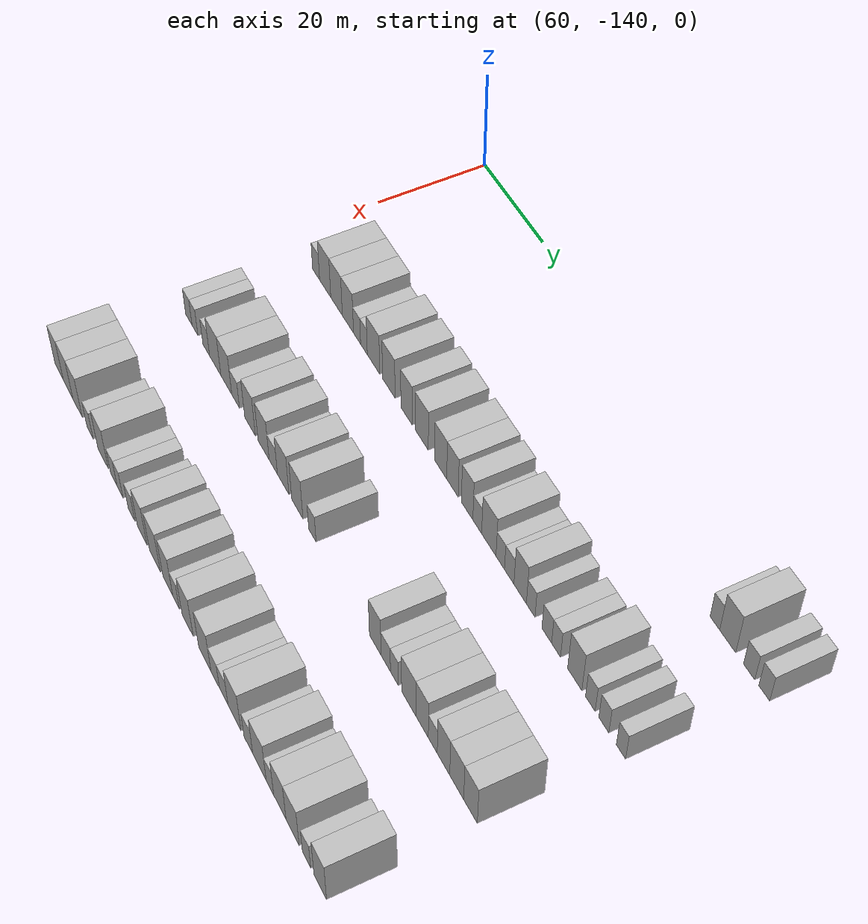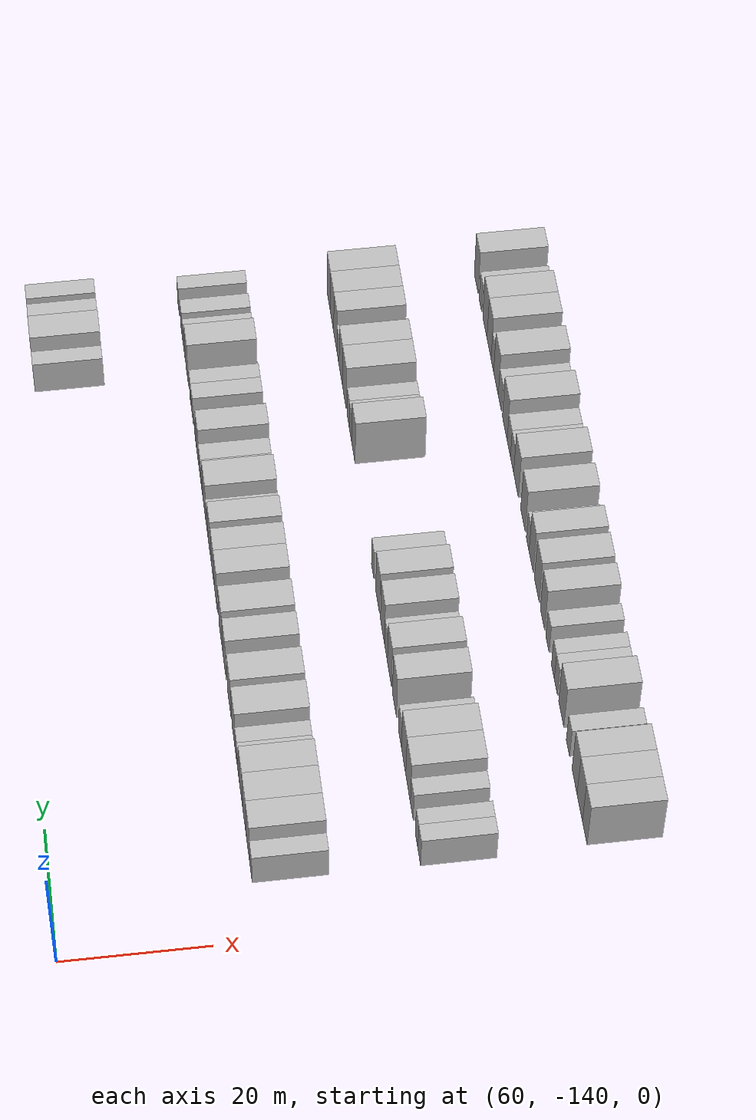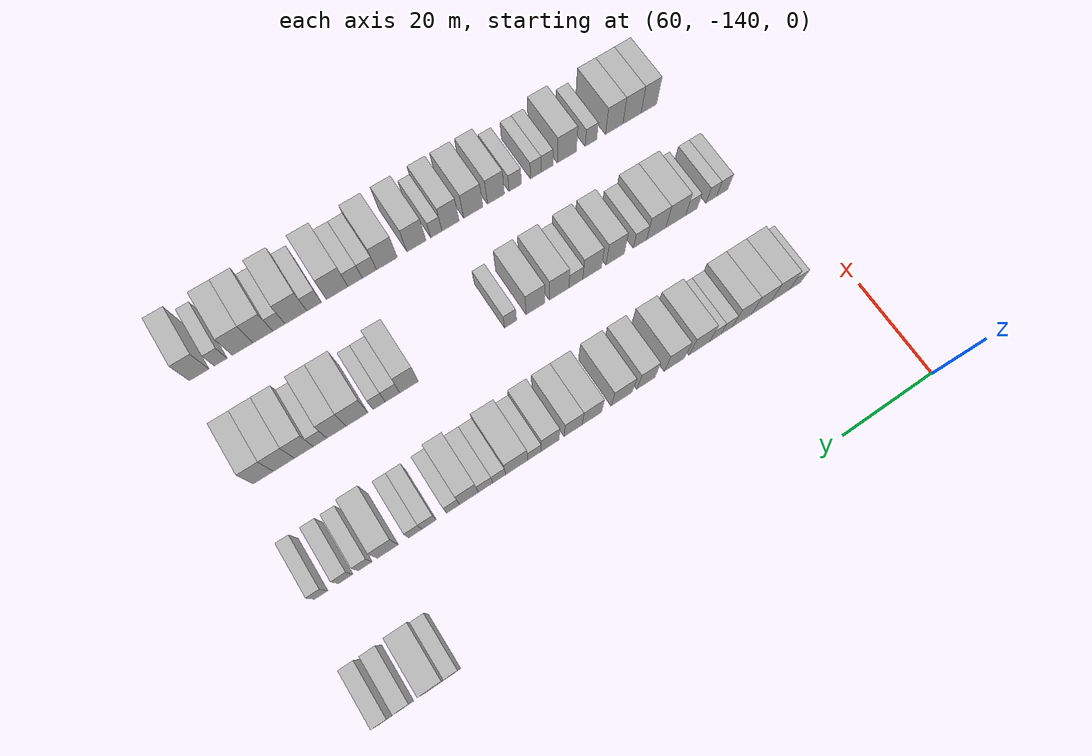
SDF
<sdf version="1.6">
 <world name="default">
  <model name="building_463">
   <static>1</static>
   <pose>69.0000 -44.7590 0 0.000000 0.000000 0.000000</pose>
   <link name="link">
    <pose>0 0 3.00 0 0 0</pose>
    <collision name="collision"><geometry><box><size>10.0000 2.5113 6.0000</size></box></geometry></collision>
    <visual name="visual">
     <cast_shadows>0</cast_shadows>
     <geometry><box><size>10.0000 2.5113 6.0000</size></box></geometry>
     <material>
      <script>
       <uri>model://HANNAS_wall/materials/scripts</uri>
       <uri>model://HANNAS_wall/materials/textures</uri>
       <name>vrc/HANNAS_wall</name>
      </script>
     </material>
    </visual>
   </link>
  </model>
  <model name="building_464">
   <static>1</static>
   <pose>69.0000 -41.4281 0 0.000000 0.000000 0.000000</pose>
   <link name="link">
    <pose>0 0 4.50 0 0 0</pose>
    <collision name="collision"><geometry><box><size>10.0000 4.1505 9.0000</size></box></geometry></collision>
    <visual name="visual">
     <cast_shadows>0</cast_shadows>
     <geometry><box><size>10.0000 4.1505 9.0000</size></box></geometry>
     <material>
      <script>
       <uri>model://HANNAS_wall/materials/scripts</uri>
       <uri>model://HANNAS_wall/materials/textures</uri>
       <name>vrc/HANNAS_wall</name>
      </script>
     </material>
    </visual>
   </link>
  </model>
  <model name="building_465">
   <static>1</static>
   <pose>69.0000 -35.9281 0 0.000000 0.000000 0.000000</pose>
   <link name="link">
    <pose>0 0 3.00 0 0 0</pose>
    <collision name="collision"><geometry><box><size>10.0000 2.8494 6.0000</size></box></geometry></collision>
    <visual name="visual">
     <cast_shadows>0</cast_shadows>
     <geometry><box><size>10.0000 2.8494 6.0000</size></box></geometry>
     <material>
      <script>
       <uri>model://HANNAS_wall/materials/scripts</uri>
       <uri>model://HANNAS_wall/materials/textures</uri>
       <name>vrc/HANNAS_wall</name>
      </script>
     </material>
    </visual>
   </link>
  </model>
  <model name="building_466">
   <static>1</static>
   <pose>69.0000 -32.1432 0 0.000000 0.000000 0.000000</pose>
   <link name="link">
    <pose>0 0 3.00 0 0 0</pose>
    <collision name="collision"><geometry><box><size>10.0000 2.7205 6.0000</size></box></geometry></collision>
    <visual name="visual">
     <cast_shadows>0</cast_shadows>
     <geometry><box><size>10.0000 2.7205 6.0000</size></box></geometry>
     <material>
      <script>
       <uri>model://HANNAS_wall/materials/scripts</uri>
       <uri>model://HANNAS_wall/materials/textures</uri>
       <name>vrc/HANNAS_wall</name>
      </script>
     </material>
    </visual>
   </link>
  </model>
  <model name="building_626">
   <static>1</static>
   <pose>91.0000 -130.0232 0 0.000000 0.000000 0.000000</pose>
   <link name="link">
    <pose>0 0 3.00 0 0 0</pose>
    <collision name="collision"><geometry><box><size>10.0000 2.6741 6.0000</size></box></geometry></collision>
    <visual name="visual">
     <cast_shadows>0</cast_shadows>
     <geometry><box><size>10.0000 2.6741 6.0000</size></box></geometry>
     <material>
      <script>
       <uri>model://HANNAS_wall/materials/scripts</uri>
       <uri>model://HANNAS_wall/materials/textures</uri>
       <name>vrc/HANNAS_wall</name>
      </script>
     </material>
    </visual>
   </link>
  </model>
  <model name="building_627">
   <static>1</static>
   <pose>91.0000 -126.5679 0 0.000000 0.000000 0.000000</pose>
   <link name="link">
    <pose>0 0 4.50 0 0 0</pose>
    <collision name="collision"><geometry><box><size>10.0000 4.2367 9.0000</size></box></geometry></collision>
    <visual name="visual">
     <cast_shadows>0</cast_shadows>
     <geometry><box><size>10.0000 4.2367 9.0000</size></box></geometry>
     <material>
      <script>
       <uri>model://HANNAS_wall/materials/scripts</uri>
       <uri>model://HANNAS_wall/materials/textures</uri>
       <name>vrc/HANNAS_wall</name>
      </script>
     </material>
    </visual>
   </link>
  </model>
  <model name="building_628">
   <static>1</static>
   <pose>91.0000 -122.2963 0 0.000000 0.000000 0.000000</pose>
   <link name="link">
    <pose>0 0 4.50 0 0 0</pose>
    <collision name="collision"><geometry><box><size>10.0000 4.3065 9.0000</size></box></geometry></collision>
    <visual name="visual">
     <cast_shadows>0</cast_shadows>
     <geometry><box><size>10.0000 4.3065 9.0000</size></box></geometry>
     <material>
      <script>
       <uri>model://HANNAS_wall/materials/scripts</uri>
       <uri>model://HANNAS_wall/materials/textures</uri>
       <name>vrc/HANNAS_wall</name>
      </script>
     </material>
    </visual>
   </link>
  </model>
  <model name="building_629">
   <static>1</static>
   <pose>91.0000 -118.0868 0 0.000000 0.000000 0.000000</pose>
   <link name="link">
    <pose>0 0 4.50 0 0 0</pose>
    <collision name="collision"><geometry><box><size>10.0000 4.1126 9.0000</size></box></geometry></collision>
    <visual name="visual">
     <cast_shadows>0</cast_shadows>
     <geometry><box><size>10.0000 4.1126 9.0000</size></box></geometry>
     <material>
      <script>
       <uri>model://HANNAS_wall/materials/scripts</uri>
       <uri>model://HANNAS_wall/materials/textures</uri>
       <name>vrc/HANNAS_wall</name>
      </script>
     </material>
    </visual>
   </link>
  </model>
  <model name="building_630">
   <static>1</static>
   <pose>91.0000 -114.7504 0 0.000000 0.000000 0.000000</pose>
   <link name="link">
    <pose>0 0 3.00 0 0 0</pose>
    <collision name="collision"><geometry><box><size>10.0000 2.5602 6.0000</size></box></geometry></collision>
    <visual name="visual">
     <cast_shadows>0</cast_shadows>
     <geometry><box><size>10.0000 2.5602 6.0000</size></box></geometry>
     <material>
      <script>
       <uri>model://HANNAS_wall/materials/scripts</uri>
       <uri>model://HANNAS_wall/materials/textures</uri>
       <name>vrc/HANNAS_wall</name>
      </script>
     </material>
    </visual>
   </link>
  </model>
  <model name="building_631">
   <static>1</static>
   <pose>91.0000 -112.2660 0 0.000000 0.000000 0.000000</pose>
   <link name="link">
    <pose>0 0 3.00 0 0 0</pose>
    <collision name="collision"><geometry><box><size>10.0000 2.4086 6.0000</size></box></geometry></collision>
    <visual name="visual">
     <cast_shadows>0</cast_shadows>
     <geometry><box><size>10.0000 2.4086 6.0000</size></box></geometry>
     <material>
      <script>
       <uri>model://HANNAS_wall/materials/scripts</uri>
       <uri>model://HANNAS_wall/materials/textures</uri>
       <name>vrc/HANNAS_wall</name>
      </script>
     </material>
    </visual>
   </link>
  </model>
  <model name="building_632">
   <static>1</static>
   <pose>91.0000 -108.8347 0 0.000000 0.000000 0.000000</pose>
   <link name="link">
    <pose>0 0 4.50 0 0 0</pose>
    <collision name="collision"><geometry><box><size>10.0000 4.4540 9.0000</size></box></geometry></collision>
    <visual name="visual">
     <cast_shadows>0</cast_shadows>
     <geometry><box><size>10.0000 4.4540 9.0000</size></box></geometry>
     <material>
      <script>
       <uri>model://HANNAS_wall/materials/scripts</uri>
       <uri>model://HANNAS_wall/materials/textures</uri>
       <name>vrc/HANNAS_wall</name>
      </script>
     </material>
    </visual>
   </link>
  </model>
  <model name="building_633">
   <static>1</static>
   <pose>91.0000 -103.4372 0 0.000000 0.000000 0.000000</pose>
   <link name="link">
    <pose>0 0 4.50 0 0 0</pose>
    <collision name="collision"><geometry><box><size>10.0000 4.3411 9.0000</size></box></geometry></collision>
    <visual name="visual">
     <cast_shadows>0</cast_shadows>
     <geometry><box><size>10.0000 4.3411 9.0000</size></box></geometry>
     <material>
      <script>
       <uri>model://HANNAS_wall/materials/scripts</uri>
       <uri>model://HANNAS_wall/materials/textures</uri>
       <name>vrc/HANNAS_wall</name>
      </script>
     </material>
    </visual>
   </link>
  </model>
  <model name="building_634">
   <static>1</static>
   <pose>91.0000 -97.3536 0 0.000000 0.000000 0.000000</pose>
   <link name="link">
    <pose>0 0 4.50 0 0 0</pose>
    <collision name="collision"><geometry><box><size>10.0000 3.8260 9.0000</size></box></geometry></collision>
    <visual name="visual">
     <cast_shadows>0</cast_shadows>
     <geometry><box><size>10.0000 3.8260 9.0000</size></box></geometry>
     <material>
      <script>
       <uri>model://HANNAS_wall/materials/scripts</uri>
       <uri>model://HANNAS_wall/materials/textures</uri>
       <name>vrc/HANNAS_wall</name>
      </script>
     </material>
    </visual>
   </link>
  </model>
  <model name="building_635">
   <static>1</static>
   <pose>91.0000 -92.2466 0 0.000000 0.000000 0.000000</pose>
   <link name="link">
    <pose>0 0 4.50 0 0 0</pose>
    <collision name="collision"><geometry><box><size>10.0000 4.3881 9.0000</size></box></geometry></collision>
    <visual name="visual">
     <cast_shadows>0</cast_shadows>
     <geometry><box><size>10.0000 4.3881 9.0000</size></box></geometry>
     <material>
      <script>
       <uri>model://HANNAS_wall/materials/scripts</uri>
       <uri>model://HANNAS_wall/materials/textures</uri>
       <name>vrc/HANNAS_wall</name>
      </script>
     </material>
    </visual>
   </link>
  </model>
  <model name="building_636">
   <static>1</static>
   <pose>91.0000 -86.0357 0 0.000000 0.000000 0.000000</pose>
   <link name="link">
    <pose>0 0 4.50 0 0 0</pose>
    <collision name="collision"><geometry><box><size>10.0000 4.0337 9.0000</size></box></geometry></collision>
    <visual name="visual">
     <cast_shadows>0</cast_shadows>
     <geometry><box><size>10.0000 4.0337 9.0000</size></box></geometry>
     <material>
      <script>
       <uri>model://HANNAS_wall/materials/scripts</uri>
       <uri>model://HANNAS_wall/materials/textures</uri>
       <name>vrc/HANNAS_wall</name>
      </script>
     </material>
    </visual>
   </link>
  </model>
  <model name="building_637">
   <static>1</static>
   <pose>91.0000 -82.1734 0 0.000000 0.000000 0.000000</pose>
   <link name="link">
    <pose>0 0 4.50 0 0 0</pose>
    <collision name="collision"><geometry><box><size>10.0000 3.6909 9.0000</size></box></geometry></collision>
    <visual name="visual">
     <cast_shadows>0</cast_shadows>
     <geometry><box><size>10.0000 3.6909 9.0000</size></box></geometry>
     <material>
      <script>
       <uri>model://HANNAS_wall/materials/scripts</uri>
       <uri>model://HANNAS_wall/materials/textures</uri>
       <name>vrc/HANNAS_wall</name>
      </script>
     </material>
    </visual>
   </link>
  </model>
  <model name="building_638">
   <static>1</static>
   <pose>91.0000 -77.5149 0 0.000000 0.000000 0.000000</pose>
   <link name="link">
    <pose>0 0 4.50 0 0 0</pose>
    <collision name="collision"><geometry><box><size>10.0000 3.6260 9.0000</size></box></geometry></collision>
    <visual name="visual">
     <cast_shadows>0</cast_shadows>
     <geometry><box><size>10.0000 3.6260 9.0000</size></box></geometry>
     <material>
      <script>
       <uri>model://HANNAS_wall/materials/scripts</uri>
       <uri>model://HANNAS_wall/materials/textures</uri>
       <name>vrc/HANNAS_wall</name>
      </script>
     </material>
    </visual>
   </link>
  </model>
  <model name="building_639">
   <static>1</static>
   <pose>91.0000 -74.3358 0 0.000000 0.000000 0.000000</pose>
   <link name="link">
    <pose>0 0 3.00 0 0 0</pose>
    <collision name="collision"><geometry><box><size>10.0000 2.7323 6.0000</size></box></geometry></collision>
    <visual name="visual">
     <cast_shadows>0</cast_shadows>
     <geometry><box><size>10.0000 2.7323 6.0000</size></box></geometry>
     <material>
      <script>
       <uri>model://HANNAS_wall/materials/scripts</uri>
       <uri>model://HANNAS_wall/materials/textures</uri>
       <name>vrc/HANNAS_wall</name>
      </script>
     </material>
    </visual>
   </link>
  </model>
  <model name="building_640">
   <static>1</static>
   <pose>91.0000 -70.7584 0 0.000000 0.000000 0.000000</pose>
   <link name="link">
    <pose>0 0 4.50 0 0 0</pose>
    <collision name="collision"><geometry><box><size>10.0000 4.4225 9.0000</size></box></geometry></collision>
    <visual name="visual">
     <cast_shadows>0</cast_shadows>
     <geometry><box><size>10.0000 4.4225 9.0000</size></box></geometry>
     <material>
      <script>
       <uri>model://HANNAS_wall/materials/scripts</uri>
       <uri>model://HANNAS_wall/materials/textures</uri>
       <name>vrc/HANNAS_wall</name>
      </script>
     </material>
    </visual>
   </link>
  </model>
  <model name="building_641">
   <static>1</static>
   <pose>91.0000 -67.2638 0 0.000000 0.000000 0.000000</pose>
   <link name="link">
    <pose>0 0 3.00 0 0 0</pose>
    <collision name="collision"><geometry><box><size>10.0000 2.5666 6.0000</size></box></geometry></collision>
    <visual name="visual">
     <cast_shadows>0</cast_shadows>
     <geometry><box><size>10.0000 2.5666 6.0000</size></box></geometry>
     <material>
      <script>
       <uri>model://HANNAS_wall/materials/scripts</uri>
       <uri>model://HANNAS_wall/materials/textures</uri>
       <name>vrc/HANNAS_wall</name>
      </script>
     </material>
    </visual>
   </link>
  </model>
  <model name="building_642">
   <static>1</static>
   <pose>91.0000 -64.5611 0 0.000000 0.000000 0.000000</pose>
   <link name="link">
    <pose>0 0 3.00 0 0 0</pose>
    <collision name="collision"><geometry><box><size>10.0000 2.8389 6.0000</size></box></geometry></collision>
    <visual name="visual">
     <cast_shadows>0</cast_shadows>
     <geometry><box><size>10.0000 2.8389 6.0000</size></box></geometry>
     <material>
      <script>
       <uri>model://HANNAS_wall/materials/scripts</uri>
       <uri>model://HANNAS_wall/materials/textures</uri>
       <name>vrc/HANNAS_wall</name>
      </script>
     </material>
    </visual>
   </link>
  </model>
  <model name="building_643">
   <static>1</static>
   <pose>91.0000 -61.2930 0 0.000000 0.000000 0.000000</pose>
   <link name="link">
    <pose>0 0 4.50 0 0 0</pose>
    <collision name="collision"><geometry><box><size>10.0000 3.6973 9.0000</size></box></geometry></collision>
    <visual name="visual">
     <cast_shadows>0</cast_shadows>
     <geometry><box><size>10.0000 3.6973 9.0000</size></box></geometry>
     <material>
      <script>
       <uri>model://HANNAS_wall/materials/scripts</uri>
       <uri>model://HANNAS_wall/materials/textures</uri>
       <name>vrc/HANNAS_wall</name>
      </script>
     </material>
    </visual>
   </link>
  </model>
  <model name="building_644">
   <static>1</static>
   <pose>91.0000 -58.1826 0 0.000000 0.000000 0.000000</pose>
   <link name="link">
    <pose>0 0 3.00 0 0 0</pose>
    <collision name="collision"><geometry><box><size>10.0000 2.5234 6.0000</size></box></geometry></collision>
    <visual name="visual">
     <cast_shadows>0</cast_shadows>
     <geometry><box><size>10.0000 2.5234 6.0000</size></box></geometry>
     <material>
      <script>
       <uri>model://HANNAS_wall/materials/scripts</uri>
       <uri>model://HANNAS_wall/materials/textures</uri>
       <name>vrc/HANNAS_wall</name>
      </script>
     </material>
    </visual>
   </link>
  </model>
  <model name="building_645">
   <static>1</static>
   <pose>91.0000 -53.5271 0 0.000000 0.000000 0.000000</pose>
   <link name="link">
    <pose>0 0 3.00 0 0 0</pose>
    <collision name="collision"><geometry><box><size>10.0000 2.7877 6.0000</size></box></geometry></collision>
    <visual name="visual">
     <cast_shadows>0</cast_shadows>
     <geometry><box><size>10.0000 2.7877 6.0000</size></box></geometry>
     <material>
      <script>
       <uri>model://HANNAS_wall/materials/scripts</uri>
       <uri>model://HANNAS_wall/materials/textures</uri>
       <name>vrc/HANNAS_wall</name>
      </script>
     </material>
    </visual>
   </link>
  </model>
  <model name="building_646">
   <static>1</static>
   <pose>91.0000 -50.8676 0 0.000000 0.000000 0.000000</pose>
   <link name="link">
    <pose>0 0 3.00 0 0 0</pose>
    <collision name="collision"><geometry><box><size>10.0000 2.5313 6.0000</size></box></geometry></collision>
    <visual name="visual">
     <cast_shadows>0</cast_shadows>
     <geometry><box><size>10.0000 2.5313 6.0000</size></box></geometry>
     <material>
      <script>
       <uri>model://HANNAS_wall/materials/scripts</uri>
       <uri>model://HANNAS_wall/materials/textures</uri>
       <name>vrc/HANNAS_wall</name>
      </script>
     </material>
    </visual>
   </link>
  </model>
  <model name="building_647">
   <static>1</static>
   <pose>91.0000 -45.6204 0 0.000000 0.000000 0.000000</pose>
   <link name="link">
    <pose>0 0 4.50 0 0 0</pose>
    <collision name="collision"><geometry><box><size>10.0000 3.9631 9.0000</size></box></geometry></collision>
    <visual name="visual">
     <cast_shadows>0</cast_shadows>
     <geometry><box><size>10.0000 3.9631 9.0000</size></box></geometry>
     <material>
      <script>
       <uri>model://HANNAS_wall/materials/scripts</uri>
       <uri>model://HANNAS_wall/materials/textures</uri>
       <name>vrc/HANNAS_wall</name>
      </script>
     </material>
    </visual>
   </link>
  </model>
  <model name="building_648">
   <static>1</static>
   <pose>91.0000 -41.3291 0 0.000000 0.000000 0.000000</pose>
   <link name="link">
    <pose>0 0 3.00 0 0 0</pose>
    <collision name="collision"><geometry><box><size>10.0000 2.6196 6.0000</size></box></geometry></collision>
    <visual name="visual">
     <cast_shadows>0</cast_shadows>
     <geometry><box><size>10.0000 2.6196 6.0000</size></box></geometry>
     <material>
      <script>
       <uri>model://HANNAS_wall/materials/scripts</uri>
       <uri>model://HANNAS_wall/materials/textures</uri>
       <name>vrc/HANNAS_wall</name>
      </script>
     </material>
    </visual>
   </link>
  </model>
  <model name="building_649">
   <static>1</static>
   <pose>91.0000 -37.6736 0 0.000000 0.000000 0.000000</pose>
   <link name="link">
    <pose>0 0 3.00 0 0 0</pose>
    <collision name="collision"><geometry><box><size>10.0000 2.6913 6.0000</size></box></geometry></collision>
    <visual name="visual">
     <cast_shadows>0</cast_shadows>
     <geometry><box><size>10.0000 2.6913 6.0000</size></box></geometry>
     <material>
      <script>
       <uri>model://HANNAS_wall/materials/scripts</uri>
       <uri>model://HANNAS_wall/materials/textures</uri>
       <name>vrc/HANNAS_wall</name>
      </script>
     </material>
    </visual>
   </link>
  </model>
  <model name="building_650">
   <static>1</static>
   <pose>91.0000 -33.1117 0 0.000000 0.000000 0.000000</pose>
   <link name="link">
    <pose>0 0 3.00 0 0 0</pose>
    <collision name="collision"><geometry><box><size>10.0000 2.4324 6.0000</size></box></geometry></collision>
    <visual name="visual">
     <cast_shadows>0</cast_shadows>
     <geometry><box><size>10.0000 2.4324 6.0000</size></box></geometry>
     <material>
      <script>
       <uri>model://HANNAS_wall/materials/scripts</uri>
       <uri>model://HANNAS_wall/materials/textures</uri>
       <name>vrc/HANNAS_wall</name>
      </script>
     </material>
    </visual>
   </link>
  </model>
  <model name="building_815">
   <static>1</static>
   <pose>113.0000 -130.1906 0 0.000000 0.000000 0.000000</pose>
   <link name="link">
    <pose>0 0 3.00 0 0 0</pose>
    <collision name="collision"><geometry><box><size>10.0000 2.6004 6.0000</size></box></geometry></collision>
    <visual name="visual">
     <cast_shadows>0</cast_shadows>
     <geometry><box><size>10.0000 2.6004 6.0000</size></box></geometry>
     <material>
      <script>
       <uri>model://HANNAS_wall/materials/scripts</uri>
       <uri>model://HANNAS_wall/materials/textures</uri>
       <name>vrc/HANNAS_wall</name>
      </script>
     </material>
    </visual>
   </link>
  </model>
  <model name="building_816">
   <static>1</static>
   <pose>113.0000 -127.6890 0 0.000000 0.000000 0.000000</pose>
   <link name="link">
    <pose>0 0 3.00 0 0 0</pose>
    <collision name="collision"><geometry><box><size>10.0000 2.4028 6.0000</size></box></geometry></collision>
    <visual name="visual">
     <cast_shadows>0</cast_shadows>
     <geometry><box><size>10.0000 2.4028 6.0000</size></box></geometry>
     <material>
      <script>
       <uri>model://HANNAS_wall/materials/scripts</uri>
       <uri>model://HANNAS_wall/materials/textures</uri>
       <name>vrc/HANNAS_wall</name>
      </script>
     </material>
    </visual>
   </link>
  </model>
  <model name="building_817">
   <static>1</static>
   <pose>113.0000 -123.1383 0 0.000000 0.000000 0.000000</pose>
   <link name="link">
    <pose>0 0 3.00 0 0 0</pose>
    <collision name="collision"><geometry><box><size>10.0000 2.6985 6.0000</size></box></geometry></collision>
    <visual name="visual">
     <cast_shadows>0</cast_shadows>
     <geometry><box><size>10.0000 2.6985 6.0000</size></box></geometry>
     <material>
      <script>
       <uri>model://HANNAS_wall/materials/scripts</uri>
       <uri>model://HANNAS_wall/materials/textures</uri>
       <name>vrc/HANNAS_wall</name>
      </script>
     </material>
    </visual>
   </link>
  </model>
  <model name="building_818">
   <static>1</static>
   <pose>113.0000 -119.5621 0 0.000000 0.000000 0.000000</pose>
   <link name="link">
    <pose>0 0 4.50 0 0 0</pose>
    <collision name="collision"><geometry><box><size>10.0000 4.4540 9.0000</size></box></geometry></collision>
    <visual name="visual">
     <cast_shadows>0</cast_shadows>
     <geometry><box><size>10.0000 4.4540 9.0000</size></box></geometry>
     <material>
      <script>
       <uri>model://HANNAS_wall/materials/scripts</uri>
       <uri>model://HANNAS_wall/materials/textures</uri>
       <name>vrc/HANNAS_wall</name>
      </script>
     </material>
    </visual>
   </link>
  </model>
  <model name="building_819">
   <static>1</static>
   <pose>113.0000 -115.2189 0 0.000000 0.000000 0.000000</pose>
   <link name="link">
    <pose>0 0 4.50 0 0 0</pose>
    <collision name="collision"><geometry><box><size>10.0000 4.2324 9.0000</size></box></geometry></collision>
    <visual name="visual">
     <cast_shadows>0</cast_shadows>
     <geometry><box><size>10.0000 4.2324 9.0000</size></box></geometry>
     <material>
      <script>
       <uri>model://HANNAS_wall/materials/scripts</uri>
       <uri>model://HANNAS_wall/materials/textures</uri>
       <name>vrc/HANNAS_wall</name>
      </script>
     </material>
    </visual>
   </link>
  </model>
  <model name="building_820">
   <static>1</static>
   <pose>113.0000 -111.6192 0 0.000000 0.000000 0.000000</pose>
   <link name="link">
    <pose>0 0 3.00 0 0 0</pose>
    <collision name="collision"><geometry><box><size>10.0000 2.9671 6.0000</size></box></geometry></collision>
    <visual name="visual">
     <cast_shadows>0</cast_shadows>
     <geometry><box><size>10.0000 2.9671 6.0000</size></box></geometry>
     <material>
      <script>
       <uri>model://HANNAS_wall/materials/scripts</uri>
       <uri>model://HANNAS_wall/materials/textures</uri>
       <name>vrc/HANNAS_wall</name>
      </script>
     </material>
    </visual>
   </link>
  </model>
  <model name="building_821">
   <static>1</static>
   <pose>113.0000 -106.1232 0 0.000000 0.000000 0.000000</pose>
   <link name="link">
    <pose>0 0 4.50 0 0 0</pose>
    <collision name="collision"><geometry><box><size>10.0000 4.0249 9.0000</size></box></geometry></collision>
    <visual name="visual">
     <cast_shadows>0</cast_shadows>
     <geometry><box><size>10.0000 4.0249 9.0000</size></box></geometry>
     <material>
      <script>
       <uri>model://HANNAS_wall/materials/scripts</uri>
       <uri>model://HANNAS_wall/materials/textures</uri>
       <name>vrc/HANNAS_wall</name>
      </script>
     </material>
    </visual>
   </link>
  </model>
  <model name="building_822">
   <static>1</static>
   <pose>113.0000 -101.0724 0 0.000000 0.000000 0.000000</pose>
   <link name="link">
    <pose>0 0 4.50 0 0 0</pose>
    <collision name="collision"><geometry><box><size>10.0000 4.0766 9.0000</size></box></geometry></collision>
    <visual name="visual">
     <cast_shadows>0</cast_shadows>
     <geometry><box><size>10.0000 4.0766 9.0000</size></box></geometry>
     <material>
      <script>
       <uri>model://HANNAS_wall/materials/scripts</uri>
       <uri>model://HANNAS_wall/materials/textures</uri>
       <name>vrc/HANNAS_wall</name>
      </script>
     </material>
    </visual>
   </link>
  </model>
  <model name="building_823">
   <static>1</static>
   <pose>113.0000 -97.5357 0 0.000000 0.000000 0.000000</pose>
   <link name="link">
    <pose>0 0 3.00 0 0 0</pose>
    <collision name="collision"><geometry><box><size>10.0000 2.9968 6.0000</size></box></geometry></collision>
    <visual name="visual">
     <cast_shadows>0</cast_shadows>
     <geometry><box><size>10.0000 2.9968 6.0000</size></box></geometry>
     <material>
      <script>
       <uri>model://HANNAS_wall/materials/scripts</uri>
       <uri>model://HANNAS_wall/materials/textures</uri>
       <name>vrc/HANNAS_wall</name>
      </script>
     </material>
    </visual>
   </link>
  </model>
  <model name="building_824">
   <static>1</static>
   <pose>113.0000 -93.9584 0 0.000000 0.000000 0.000000</pose>
   <link name="link">
    <pose>0 0 4.50 0 0 0</pose>
    <collision name="collision"><geometry><box><size>10.0000 4.1578 9.0000</size></box></geometry></collision>
    <visual name="visual">
     <cast_shadows>0</cast_shadows>
     <geometry><box><size>10.0000 4.1578 9.0000</size></box></geometry>
     <material>
      <script>
       <uri>model://HANNAS_wall/materials/scripts</uri>
       <uri>model://HANNAS_wall/materials/textures</uri>
       <name>vrc/HANNAS_wall</name>
      </script>
     </material>
    </visual>
   </link>
  </model>
  <model name="building_825">
   <static>1</static>
   <pose>113.0000 -88.9051 0 0.000000 0.000000 0.000000</pose>
   <link name="link">
    <pose>0 0 4.50 0 0 0</pose>
    <collision name="collision"><geometry><box><size>10.0000 3.9488 9.0000</size></box></geometry></collision>
    <visual name="visual">
     <cast_shadows>0</cast_shadows>
     <geometry><box><size>10.0000 3.9488 9.0000</size></box></geometry>
     <material>
      <script>
       <uri>model://HANNAS_wall/materials/scripts</uri>
       <uri>model://HANNAS_wall/materials/textures</uri>
       <name>vrc/HANNAS_wall</name>
      </script>
     </material>
    </visual>
   </link>
  </model>
  <model name="building_826">
   <static>1</static>
   <pose>113.0000 -83.6585 0 0.000000 0.000000 0.000000</pose>
   <link name="link">
    <pose>0 0 3.00 0 0 0</pose>
    <collision name="collision"><geometry><box><size>10.0000 2.5445 6.0000</size></box></geometry></collision>
    <visual name="visual">
     <cast_shadows>0</cast_shadows>
     <geometry><box><size>10.0000 2.5445 6.0000</size></box></geometry>
     <material>
      <script>
       <uri>model://HANNAS_wall/materials/scripts</uri>
       <uri>model://HANNAS_wall/materials/textures</uri>
       <name>vrc/HANNAS_wall</name>
      </script>
     </material>
    </visual>
   </link>
  </model>
  <model name="building_827">
   <static>1</static>
   <pose>113.0000 -62.8035 0 0.000000 0.000000 0.000000</pose>
   <link name="link">
    <pose>0 0 4.50 0 0 0</pose>
    <collision name="collision"><geometry><box><size>10.0000 3.7218 9.0000</size></box></geometry></collision>
    <visual name="visual">
     <cast_shadows>0</cast_shadows>
     <geometry><box><size>10.0000 3.7218 9.0000</size></box></geometry>
     <material>
      <script>
       <uri>model://HANNAS_wall/materials/scripts</uri>
       <uri>model://HANNAS_wall/materials/textures</uri>
       <name>vrc/HANNAS_wall</name>
      </script>
     </material>
    </visual>
   </link>
  </model>
  <model name="building_828">
   <static>1</static>
   <pose>113.0000 -59.4911 0 0.000000 0.000000 0.000000</pose>
   <link name="link">
    <pose>0 0 3.00 0 0 0</pose>
    <collision name="collision"><geometry><box><size>10.0000 2.9030 6.0000</size></box></geometry></collision>
    <visual name="visual">
     <cast_shadows>0</cast_shadows>
     <geometry><box><size>10.0000 2.9030 6.0000</size></box></geometry>
     <material>
      <script>
       <uri>model://HANNAS_wall/materials/scripts</uri>
       <uri>model://HANNAS_wall/materials/textures</uri>
       <name>vrc/HANNAS_wall</name>
      </script>
     </material>
    </visual>
   </link>
  </model>
  <model name="building_829">
   <static>1</static>
   <pose>113.0000 -56.8174 0 0.000000 0.000000 0.000000</pose>
   <link name="link">
    <pose>0 0 3.00 0 0 0</pose>
    <collision name="collision"><geometry><box><size>10.0000 2.4445 6.0000</size></box></geometry></collision>
    <visual name="visual">
     <cast_shadows>0</cast_shadows>
     <geometry><box><size>10.0000 2.4445 6.0000</size></box></geometry>
     <material>
      <script>
       <uri>model://HANNAS_wall/materials/scripts</uri>
       <uri>model://HANNAS_wall/materials/textures</uri>
       <name>vrc/HANNAS_wall</name>
      </script>
     </material>
    </visual>
   </link>
  </model>
  <model name="building_830">
   <static>1</static>
   <pose>113.0000 -52.4267 0 0.000000 0.000000 0.000000</pose>
   <link name="link">
    <pose>0 0 4.50 0 0 0</pose>
    <collision name="collision"><geometry><box><size>10.0000 4.3368 9.0000</size></box></geometry></collision>
    <visual name="visual">
     <cast_shadows>0</cast_shadows>
     <geometry><box><size>10.0000 4.3368 9.0000</size></box></geometry>
     <material>
      <script>
       <uri>model://HANNAS_wall/materials/scripts</uri>
       <uri>model://HANNAS_wall/materials/textures</uri>
       <name>vrc/HANNAS_wall</name>
      </script>
     </material>
    </visual>
   </link>
  </model>
  <model name="building_831">
   <static>1</static>
   <pose>113.0000 -48.3934 0 0.000000 0.000000 0.000000</pose>
   <link name="link">
    <pose>0 0 4.50 0 0 0</pose>
    <collision name="collision"><geometry><box><size>10.0000 3.7298 9.0000</size></box></geometry></collision>
    <visual name="visual">
     <cast_shadows>0</cast_shadows>
     <geometry><box><size>10.0000 3.7298 9.0000</size></box></geometry>
     <material>
      <script>
       <uri>model://HANNAS_wall/materials/scripts</uri>
       <uri>model://HANNAS_wall/materials/textures</uri>
       <name>vrc/HANNAS_wall</name>
      </script>
     </material>
    </visual>
   </link>
  </model>
  <model name="building_832">
   <static>1</static>
   <pose>113.0000 -45.2118 0 0.000000 0.000000 0.000000</pose>
   <link name="link">
    <pose>0 0 3.00 0 0 0</pose>
    <collision name="collision"><geometry><box><size>10.0000 2.6335 6.0000</size></box></geometry></collision>
    <visual name="visual">
     <cast_shadows>0</cast_shadows>
     <geometry><box><size>10.0000 2.6335 6.0000</size></box></geometry>
     <material>
      <script>
       <uri>model://HANNAS_wall/materials/scripts</uri>
       <uri>model://HANNAS_wall/materials/textures</uri>
       <name>vrc/HANNAS_wall</name>
      </script>
     </material>
    </visual>
   </link>
  </model>
  <model name="building_833">
   <static>1</static>
   <pose>113.0000 -42.0700 0 0.000000 0.000000 0.000000</pose>
   <link name="link">
    <pose>0 0 4.50 0 0 0</pose>
    <collision name="collision"><geometry><box><size>10.0000 3.6500 9.0000</size></box></geometry></collision>
    <visual name="visual">
     <cast_shadows>0</cast_shadows>
     <geometry><box><size>10.0000 3.6500 9.0000</size></box></geometry>
     <material>
      <script>
       <uri>model://HANNAS_wall/materials/scripts</uri>
       <uri>model://HANNAS_wall/materials/textures</uri>
       <name>vrc/HANNAS_wall</name>
      </script>
     </material>
    </visual>
   </link>
  </model>
  <model name="building_834">
   <static>1</static>
   <pose>113.0000 -38.2479 0 0.000000 0.000000 0.000000</pose>
   <link name="link">
    <pose>0 0 4.50 0 0 0</pose>
    <collision name="collision"><geometry><box><size>10.0000 3.9942 9.0000</size></box></geometry></collision>
    <visual name="visual">
     <cast_shadows>0</cast_shadows>
     <geometry><box><size>10.0000 3.9942 9.0000</size></box></geometry>
     <material>
      <script>
       <uri>model://HANNAS_wall/materials/scripts</uri>
       <uri>model://HANNAS_wall/materials/textures</uri>
       <name>vrc/HANNAS_wall</name>
      </script>
     </material>
    </visual>
   </link>
  </model>
  <model name="building_835">
   <static>1</static>
   <pose>113.0000 -34.3315 0 0.000000 0.000000 0.000000</pose>
   <link name="link">
    <pose>0 0 4.50 0 0 0</pose>
    <collision name="collision"><geometry><box><size>10.0000 3.8388 9.0000</size></box></geometry></collision>
    <visual name="visual">
     <cast_shadows>0</cast_shadows>
     <geometry><box><size>10.0000 3.8388 9.0000</size></box></geometry>
     <material>
      <script>
       <uri>model://HANNAS_wall/materials/scripts</uri>
       <uri>model://HANNAS_wall/materials/textures</uri>
       <name>vrc/HANNAS_wall</name>
      </script>
     </material>
    </visual>
   </link>
  </model>
  <model name="building_989">
   <static>1</static>
   <pose>135.0000 -129.1875 0 0.000000 0.000000 0.000000</pose>
   <link name="link">
    <pose>0 0 4.50 0 0 0</pose>
    <collision name="collision"><geometry><box><size>10.0000 3.6486 9.0000</size></box></geometry></collision>
    <visual name="visual">
     <cast_shadows>0</cast_shadows>
     <geometry><box><size>10.0000 3.6486 9.0000</size></box></geometry>
     <material>
      <script>
       <uri>model://HANNAS_wall/materials/scripts</uri>
       <uri>model://HANNAS_wall/materials/textures</uri>
       <name>vrc/HANNAS_wall</name>
      </script>
     </material>
    </visual>
   </link>
  </model>
  <model name="building_990">
   <static>1</static>
   <pose>135.0000 -125.2625 0 0.000000 0.000000 0.000000</pose>
   <link name="link">
    <pose>0 0 4.50 0 0 0</pose>
    <collision name="collision"><geometry><box><size>10.0000 4.2015 9.0000</size></box></geometry></collision>
    <visual name="visual">
     <cast_shadows>0</cast_shadows>
     <geometry><box><size>10.0000 4.2015 9.0000</size></box></geometry>
     <material>
      <script>
       <uri>model://HANNAS_wall/materials/scripts</uri>
       <uri>model://HANNAS_wall/materials/textures</uri>
       <name>vrc/HANNAS_wall</name>
      </script>
     </material>
    </visual>
   </link>
  </model>
  <model name="building_991">
   <static>1</static>
   <pose>135.0000 -121.1541 0 0.000000 0.000000 0.000000</pose>
   <link name="link">
    <pose>0 0 4.50 0 0 0</pose>
    <collision name="collision"><geometry><box><size>10.0000 4.0153 9.0000</size></box></geometry></collision>
    <visual name="visual">
     <cast_shadows>0</cast_shadows>
     <geometry><box><size>10.0000 4.0153 9.0000</size></box></geometry>
     <material>
      <script>
       <uri>model://HANNAS_wall/materials/scripts</uri>
       <uri>model://HANNAS_wall/materials/textures</uri>
       <name>vrc/HANNAS_wall</name>
      </script>
     </material>
    </visual>
   </link>
  </model>
  <model name="building_992">
   <static>1</static>
   <pose>135.0000 -115.8277 0 0.000000 0.000000 0.000000</pose>
   <link name="link">
    <pose>0 0 3.00 0 0 0</pose>
    <collision name="collision"><geometry><box><size>10.0000 2.6375 6.0000</size></box></geometry></collision>
    <visual name="visual">
     <cast_shadows>0</cast_shadows>
     <geometry><box><size>10.0000 2.6375 6.0000</size></box></geometry>
     <material>
      <script>
       <uri>model://HANNAS_wall/materials/scripts</uri>
       <uri>model://HANNAS_wall/materials/textures</uri>
       <name>vrc/HANNAS_wall</name>
      </script>
     </material>
    </visual>
   </link>
  </model>
  <model name="building_993">
   <static>1</static>
   <pose>135.0000 -110.3617 0 0.000000 0.000000 0.000000</pose>
   <link name="link">
    <pose>0 0 4.50 0 0 0</pose>
    <collision name="collision"><geometry><box><size>10.0000 4.2945 9.0000</size></box></geometry></collision>
    <visual name="visual">
     <cast_shadows>0</cast_shadows>
     <geometry><box><size>10.0000 4.2945 9.0000</size></box></geometry>
     <material>
      <script>
       <uri>model://HANNAS_wall/materials/scripts</uri>
       <uri>model://HANNAS_wall/materials/textures</uri>
       <name>vrc/HANNAS_wall</name>
      </script>
     </material>
    </visual>
   </link>
  </model>
  <model name="building_994">
   <static>1</static>
   <pose>135.0000 -105.9124 0 0.000000 0.000000 0.000000</pose>
   <link name="link">
    <pose>0 0 3.00 0 0 0</pose>
    <collision name="collision"><geometry><box><size>10.0000 2.6041 6.0000</size></box></geometry></collision>
    <visual name="visual">
     <cast_shadows>0</cast_shadows>
     <geometry><box><size>10.0000 2.6041 6.0000</size></box></geometry>
     <material>
      <script>
       <uri>model://HANNAS_wall/materials/scripts</uri>
       <uri>model://HANNAS_wall/materials/textures</uri>
       <name>vrc/HANNAS_wall</name>
      </script>
     </material>
    </visual>
   </link>
  </model>
  <model name="building_995">
   <static>1</static>
   <pose>135.0000 -103.4103 0 0.000000 0.000000 0.000000</pose>
   <link name="link">
    <pose>0 0 3.00 0 0 0</pose>
    <collision name="collision"><geometry><box><size>10.0000 2.4002 6.0000</size></box></geometry></collision>
    <visual name="visual">
     <cast_shadows>0</cast_shadows>
     <geometry><box><size>10.0000 2.4002 6.0000</size></box></geometry>
     <material>
      <script>
       <uri>model://HANNAS_wall/materials/scripts</uri>
       <uri>model://HANNAS_wall/materials/textures</uri>
       <name>vrc/HANNAS_wall</name>
      </script>
     </material>
    </visual>
   </link>
  </model>
  <model name="building_996">
   <static>1</static>
   <pose>135.0000 -98.8380 0 0.000000 0.000000 0.000000</pose>
   <link name="link">
    <pose>0 0 3.00 0 0 0</pose>
    <collision name="collision"><geometry><box><size>10.0000 2.7443 6.0000</size></box></geometry></collision>
    <visual name="visual">
     <cast_shadows>0</cast_shadows>
     <geometry><box><size>10.0000 2.7443 6.0000</size></box></geometry>
     <material>
      <script>
       <uri>model://HANNAS_wall/materials/scripts</uri>
       <uri>model://HANNAS_wall/materials/textures</uri>
       <name>vrc/HANNAS_wall</name>
      </script>
     </material>
    </visual>
   </link>
  </model>
  <model name="building_997">
   <static>1</static>
   <pose>135.0000 -94.6092 0 0.000000 0.000000 0.000000</pose>
   <link name="link">
    <pose>0 0 4.50 0 0 0</pose>
    <collision name="collision"><geometry><box><size>10.0000 3.7133 9.0000</size></box></geometry></collision>
    <visual name="visual">
     <cast_shadows>0</cast_shadows>
     <geometry><box><size>10.0000 3.7133 9.0000</size></box></geometry>
     <material>
      <script>
       <uri>model://HANNAS_wall/materials/scripts</uri>
       <uri>model://HANNAS_wall/materials/textures</uri>
       <name>vrc/HANNAS_wall</name>
      </script>
     </material>
    </visual>
   </link>
  </model>
  <model name="building_998">
   <static>1</static>
   <pose>135.0000 -89.6845 0 0.000000 0.000000 0.000000</pose>
   <link name="link">
    <pose>0 0 4.50 0 0 0</pose>
    <collision name="collision"><geometry><box><size>10.0000 4.1361 9.0000</size></box></geometry></collision>
    <visual name="visual">
     <cast_shadows>0</cast_shadows>
     <geometry><box><size>10.0000 4.1361 9.0000</size></box></geometry>
     <material>
      <script>
       <uri>model://HANNAS_wall/materials/scripts</uri>
       <uri>model://HANNAS_wall/materials/textures</uri>
       <name>vrc/HANNAS_wall</name>
      </script>
     </material>
    </visual>
   </link>
  </model>
  <model name="building_999">
   <static>1</static>
   <pose>135.0000 -84.7764 0 0.000000 0.000000 0.000000</pose>
   <link name="link">
    <pose>0 0 4.50 0 0 0</pose>
    <collision name="collision"><geometry><box><size>10.0000 3.6801 9.0000</size></box></geometry></collision>
    <visual name="visual">
     <cast_shadows>0</cast_shadows>
     <geometry><box><size>10.0000 3.6801 9.0000</size></box></geometry>
     <material>
      <script>
       <uri>model://HANNAS_wall/materials/scripts</uri>
       <uri>model://HANNAS_wall/materials/textures</uri>
       <name>vrc/HANNAS_wall</name>
      </script>
     </material>
    </visual>
   </link>
  </model>
  <model name="building_1000">
   <static>1</static>
   <pose>135.0000 -81.7311 0 0.000000 0.000000 0.000000</pose>
   <link name="link">
    <pose>0 0 3.00 0 0 0</pose>
    <collision name="collision"><geometry><box><size>10.0000 2.4105 6.0000</size></box></geometry></collision>
    <visual name="visual">
     <cast_shadows>0</cast_shadows>
     <geometry><box><size>10.0000 2.4105 6.0000</size></box></geometry>
     <material>
      <script>
       <uri>model://HANNAS_wall/materials/scripts</uri>
       <uri>model://HANNAS_wall/materials/textures</uri>
       <name>vrc/HANNAS_wall</name>
      </script>
     </material>
    </visual>
   </link>
  </model>
  <model name="building_1001">
   <static>1</static>
   <pose>135.0000 -77.5016 0 0.000000 0.000000 0.000000</pose>
   <link name="link">
    <pose>0 0 4.50 0 0 0</pose>
    <collision name="collision"><geometry><box><size>10.0000 4.0485 9.0000</size></box></geometry></collision>
    <visual name="visual">
     <cast_shadows>0</cast_shadows>
     <geometry><box><size>10.0000 4.0485 9.0000</size></box></geometry>
     <material>
      <script>
       <uri>model://HANNAS_wall/materials/scripts</uri>
       <uri>model://HANNAS_wall/materials/textures</uri>
       <name>vrc/HANNAS_wall</name>
      </script>
     </material>
    </visual>
   </link>
  </model>
  <model name="building_1002">
   <static>1</static>
   <pose>135.0000 -71.2997 0 0.000000 0.000000 0.000000</pose>
   <link name="link">
    <pose>0 0 4.50 0 0 0</pose>
    <collision name="collision"><geometry><box><size>10.0000 4.3554 9.0000</size></box></geometry></collision>
    <visual name="visual">
     <cast_shadows>0</cast_shadows>
     <geometry><box><size>10.0000 4.3554 9.0000</size></box></geometry>
     <material>
      <script>
       <uri>model://HANNAS_wall/materials/scripts</uri>
       <uri>model://HANNAS_wall/materials/textures</uri>
       <name>vrc/HANNAS_wall</name>
      </script>
     </material>
    </visual>
   </link>
  </model>
  <model name="building_1003">
   <static>1</static>
   <pose>135.0000 -67.6335 0 0.000000 0.000000 0.000000</pose>
   <link name="link">
    <pose>0 0 3.00 0 0 0</pose>
    <collision name="collision"><geometry><box><size>10.0000 2.9768 6.0000</size></box></geometry></collision>
    <visual name="visual">
     <cast_shadows>0</cast_shadows>
     <geometry><box><size>10.0000 2.9768 6.0000</size></box></geometry>
     <material>
      <script>
       <uri>model://HANNAS_wall/materials/scripts</uri>
       <uri>model://HANNAS_wall/materials/textures</uri>
       <name>vrc/HANNAS_wall</name>
      </script>
     </material>
    </visual>
   </link>
  </model>
  <model name="building_1004">
   <static>1</static>
   <pose>135.0000 -64.6599 0 0.000000 0.000000 0.000000</pose>
   <link name="link">
    <pose>0 0 3.00 0 0 0</pose>
    <collision name="collision"><geometry><box><size>10.0000 2.9705 6.0000</size></box></geometry></collision>
    <visual name="visual">
     <cast_shadows>0</cast_shadows>
     <geometry><box><size>10.0000 2.9705 6.0000</size></box></geometry>
     <material>
      <script>
       <uri>model://HANNAS_wall/materials/scripts</uri>
       <uri>model://HANNAS_wall/materials/textures</uri>
       <name>vrc/HANNAS_wall</name>
      </script>
     </material>
    </visual>
   </link>
  </model>
  <model name="building_1005">
   <static>1</static>
   <pose>135.0000 -60.9821 0 0.000000 0.000000 0.000000</pose>
   <link name="link">
    <pose>0 0 4.50 0 0 0</pose>
    <collision name="collision"><geometry><box><size>10.0000 4.3851 9.0000</size></box></geometry></collision>
    <visual name="visual">
     <cast_shadows>0</cast_shadows>
     <geometry><box><size>10.0000 4.3851 9.0000</size></box></geometry>
     <material>
      <script>
       <uri>model://HANNAS_wall/materials/scripts</uri>
       <uri>model://HANNAS_wall/materials/textures</uri>
       <name>vrc/HANNAS_wall</name>
      </script>
     </material>
    </visual>
   </link>
  </model>
  <model name="building_1006">
   <static>1</static>
   <pose>135.0000 -56.3219 0 0.000000 0.000000 0.000000</pose>
   <link name="link">
    <pose>0 0 3.00 0 0 0</pose>
    <collision name="collision"><geometry><box><size>10.0000 2.9353 6.0000</size></box></geometry></collision>
    <visual name="visual">
     <cast_shadows>0</cast_shadows>
     <geometry><box><size>10.0000 2.9353 6.0000</size></box></geometry>
     <material>
      <script>
       <uri>model://HANNAS_wall/materials/scripts</uri>
       <uri>model://HANNAS_wall/materials/textures</uri>
       <name>vrc/HANNAS_wall</name>
      </script>
     </material>
    </visual>
   </link>
  </model>
  <model name="building_1007">
   <static>1</static>
   <pose>135.0000 -52.6501 0 0.000000 0.000000 0.000000</pose>
   <link name="link">
    <pose>0 0 4.50 0 0 0</pose>
    <collision name="collision"><geometry><box><size>10.0000 4.4082 9.0000</size></box></geometry></collision>
    <visual name="visual">
     <cast_shadows>0</cast_shadows>
     <geometry><box><size>10.0000 4.4082 9.0000</size></box></geometry>
     <material>
      <script>
       <uri>model://HANNAS_wall/materials/scripts</uri>
       <uri>model://HANNAS_wall/materials/textures</uri>
       <name>vrc/HANNAS_wall</name>
      </script>
     </material>
    </visual>
   </link>
  </model>
  <model name="building_1008">
   <static>1</static>
   <pose>135.0000 -49.2192 0 0.000000 0.000000 0.000000</pose>
   <link name="link">
    <pose>0 0 3.00 0 0 0</pose>
    <collision name="collision"><geometry><box><size>10.0000 2.4536 6.0000</size></box></geometry></collision>
    <visual name="visual">
     <cast_shadows>0</cast_shadows>
     <geometry><box><size>10.0000 2.4536 6.0000</size></box></geometry>
     <material>
      <script>
       <uri>model://HANNAS_wall/materials/scripts</uri>
       <uri>model://HANNAS_wall/materials/textures</uri>
       <name>vrc/HANNAS_wall</name>
      </script>
     </material>
    </visual>
   </link>
  </model>
  <model name="building_1009">
   <static>1</static>
   <pose>135.0000 -46.0273 0 0.000000 0.000000 0.000000</pose>
   <link name="link">
    <pose>0 0 4.50 0 0 0</pose>
    <collision name="collision"><geometry><box><size>10.0000 3.9303 9.0000</size></box></geometry></collision>
    <visual name="visual">
     <cast_shadows>0</cast_shadows>
     <geometry><box><size>10.0000 3.9303 9.0000</size></box></geometry>
     <material>
      <script>
       <uri>model://HANNAS_wall/materials/scripts</uri>
       <uri>model://HANNAS_wall/materials/textures</uri>
       <name>vrc/HANNAS_wall</name>
      </script>
     </material>
    </visual>
   </link>
  </model>
  <model name="building_1010">
   <static>1</static>
   <pose>135.0000 -42.0012 0 0.000000 0.000000 0.000000</pose>
   <link name="link">
    <pose>0 0 4.50 0 0 0</pose>
    <collision name="collision"><geometry><box><size>10.0000 4.1219 9.0000</size></box></geometry></collision>
    <visual name="visual">
     <cast_shadows>0</cast_shadows>
     <geometry><box><size>10.0000 4.1219 9.0000</size></box></geometry>
     <material>
      <script>
       <uri>model://HANNAS_wall/materials/scripts</uri>
       <uri>model://HANNAS_wall/materials/textures</uri>
       <name>vrc/HANNAS_wall</name>
      </script>
     </material>
    </visual>
   </link>
  </model>
  <model name="building_1011">
   <static>1</static>
   <pose>135.0000 -37.6668 0 0.000000 0.000000 0.000000</pose>
   <link name="link">
    <pose>0 0 3.00 0 0 0</pose>
    <collision name="collision"><geometry><box><size>10.0000 2.5469 6.0000</size></box></geometry></collision>
    <visual name="visual">
     <cast_shadows>0</cast_shadows>
     <geometry><box><size>10.0000 2.5469 6.0000</size></box></geometry>
     <material>
      <script>
       <uri>model://HANNAS_wall/materials/scripts</uri>
       <uri>model://HANNAS_wall/materials/textures</uri>
       <name>vrc/HANNAS_wall</name>
      </script>
     </material>
    </visual>
   </link>
  </model>
  <model name="building_1012">
   <static>1</static>
   <pose>135.0000 -33.4879 0 0.000000 0.000000 0.000000</pose>
   <link name="link">
    <pose>0 0 4.50 0 0 0</pose>
    <collision name="collision"><geometry><box><size>10.0000 3.8111 9.0000</size></box></geometry></collision>
    <visual name="visual">
     <cast_shadows>0</cast_shadows>
     <geometry><box><size>10.0000 3.8111 9.0000</size></box></geometry>
     <material>
      <script>
       <uri>model://HANNAS_wall/materials/scripts</uri>
       <uri>model://HANNAS_wall/materials/textures</uri>
       <name>vrc/HANNAS_wall</name>
      </script>
     </material>
    </visual>
   </link>
  </model>
 </world>
</sdf>
